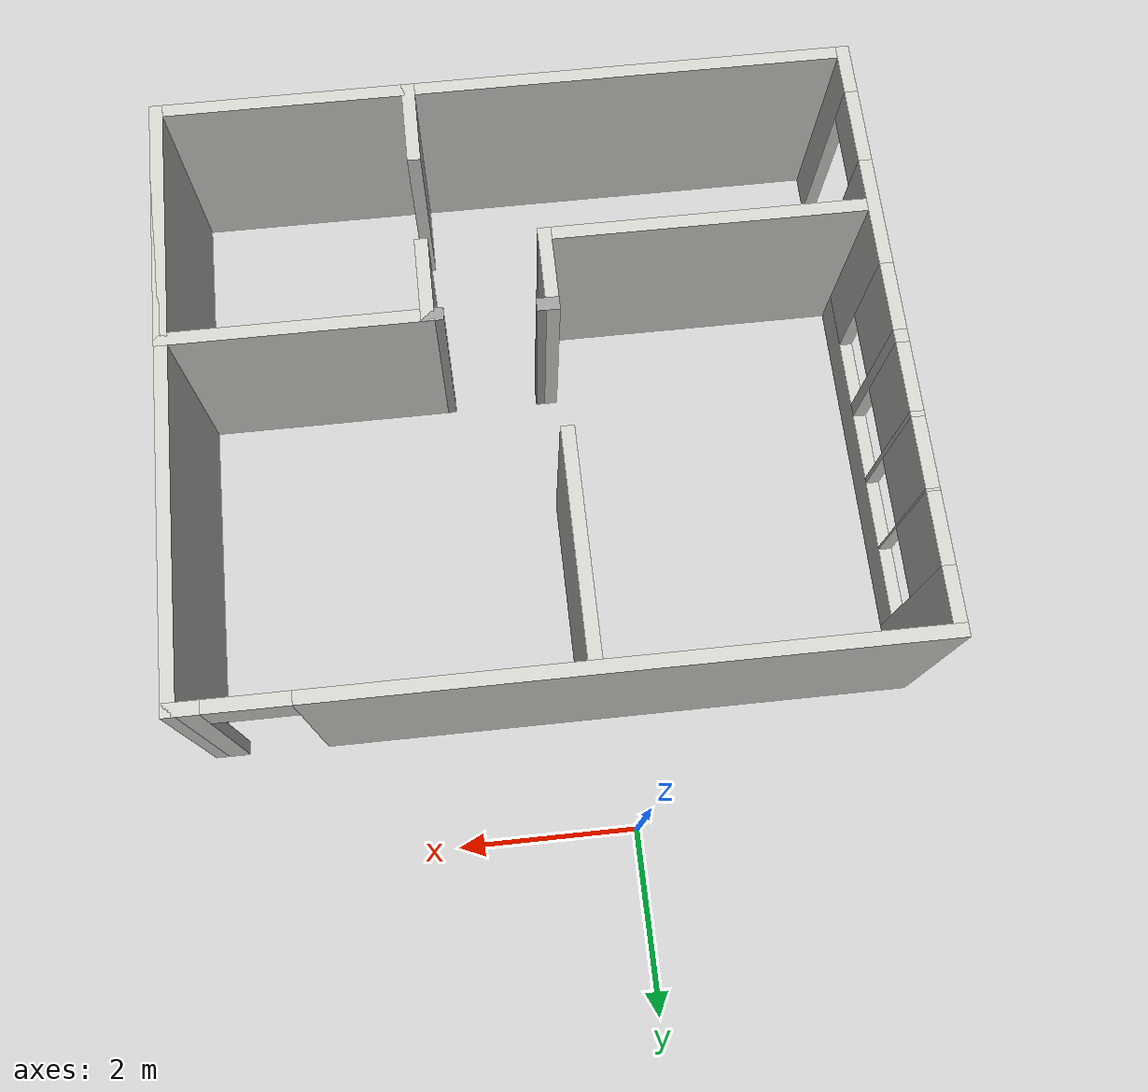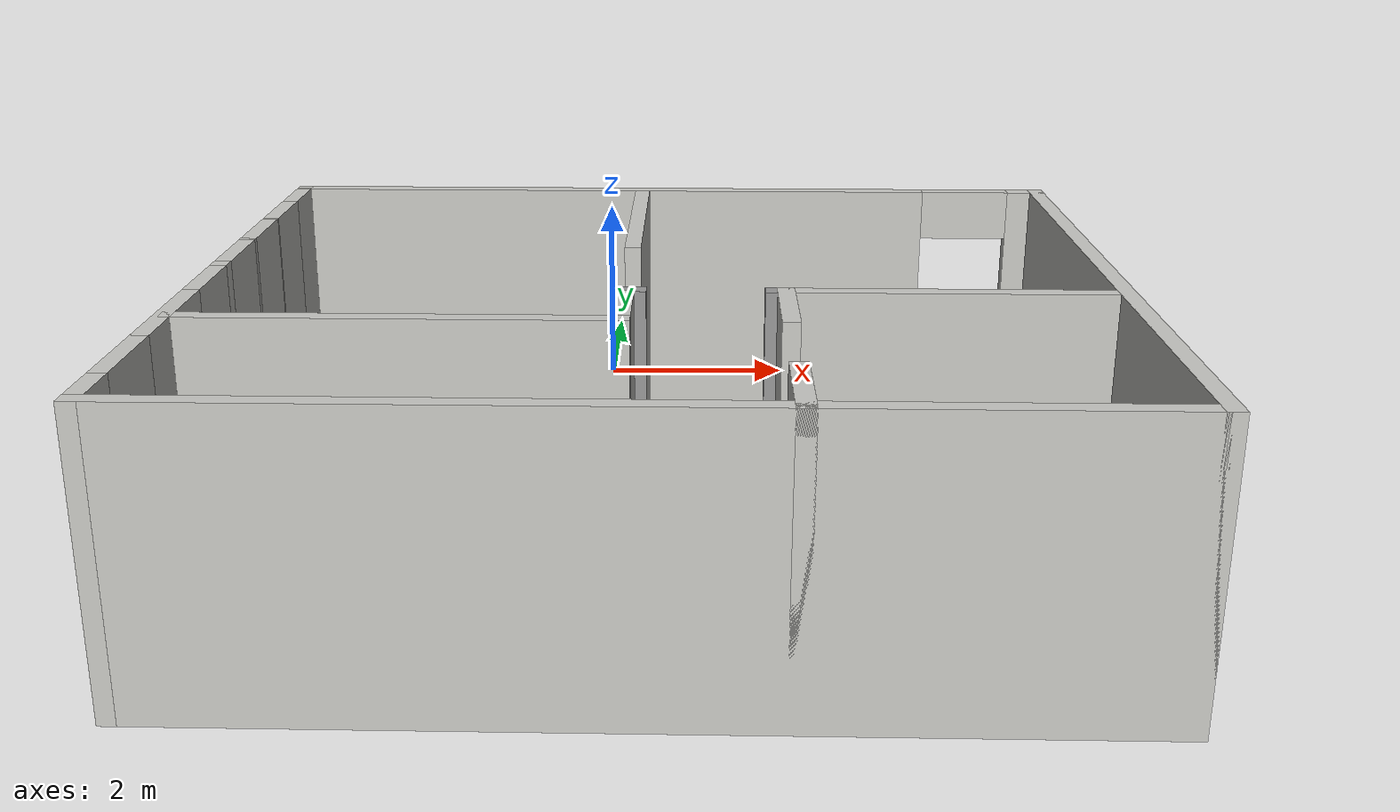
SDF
<?xml version='1.0'?>
<sdf version='1.7'>
  <model name='Four_room'>
    <pose>0.685 -4.1475 0 0 -0 0</pose>
    <link name='Wall_0'>
      <pose>-3.925 -0.6475 0 0 -0 -1.5708</pose>
      <visual name='Wall_0_Visual_0'>
        <pose>-3.12439 0 1.25 0 -0 0</pose>
        <geometry>
          <box>
            <size>0.751219 0.15 2.5</size>
          </box>
        </geometry>
        <material>
          <script>
            <uri>file://media/materials/scripts/gazebo.material</uri>
            <name>Gazebo/CeilingTiled</name>
          </script>
          <ambient>0.760784 0.662745 0.627451 1</ambient>
        </material>
        <meta>
          <layer>0</layer>
        </meta>
      </visual>
      <collision name='Wall_0_Collision_0'>
        <geometry>
          <box>
            <size>0.751219 0.15 2.5</size>
          </box>
        </geometry>
        <pose>-3.12439 0 1.25 0 -0 0</pose>
      </collision>
      <visual name='Wall_0_Visual_1'>
        <pose>3.19277 0 1.25 0 -0 0</pose>
        <geometry>
          <box>
            <size>0.614469 0.15 2.5</size>
          </box>
        </geometry>
        <material>
          <script>
            <uri>file://media/materials/scripts/gazebo.material</uri>
            <name>Gazebo/CeilingTiled</name>
          </script>
          <ambient>0.760784 0.662745 0.627451 1</ambient>
        </material>
        <meta>
          <layer>0</layer>
        </meta>
      </visual>
      <collision name='Wall_0_Collision_1'>
        <geometry>
          <box>
            <size>0.614469 0.15 2.5</size>
          </box>
        </geometry>
        <pose>3.19277 0 1.25 0 -0 0</pose>
      </collision>
      <visual name='Wall_0_Visual_2'>
        <pose>-0.381625 0 0.25 0 -0 0</pose>
        <geometry>
          <box>
            <size>4.73431 0.15 0.5</size>
          </box>
        </geometry>
        <material>
          <script>
            <uri>file://media/materials/scripts/gazebo.material</uri>
            <name>Gazebo/CeilingTiled</name>
          </script>
          <ambient>0.760784 0.662745 0.627451 1</ambient>
        </material>
        <meta>
          <layer>0</layer>
        </meta>
      </visual>
      <collision name='Wall_0_Collision_2'>
        <geometry>
          <box>
            <size>4.73431 0.15 0.5</size>
          </box>
        </geometry>
        <pose>-0.381625 0 0.25 0 -0 0</pose>
      </collision>
      <visual name='Wall_0_Visual_3'>
        <pose>-1.93543 0 1.5 0 -0 0</pose>
        <geometry>
          <box>
            <size>0.026701 0.15 2</size>
          </box>
        </geometry>
        <material>
          <script>
            <uri>file://media/materials/scripts/gazebo.material</uri>
            <name>Gazebo/CeilingTiled</name>
          </script>
          <ambient>0.760784 0.662745 0.627451 1</ambient>
        </material>
        <meta>
          <layer>0</layer>
        </meta>
      </visual>
      <collision name='Wall_0_Collision_3'>
        <geometry>
          <box>
            <size>0.026701 0.15 2</size>
          </box>
        </geometry>
        <pose>-1.93543 0 1.5 0 -0 0</pose>
      </collision>
      <visual name='Wall_0_Visual_4'>
        <pose>-1.09114 0 1.5 0 -0 0</pose>
        <geometry>
          <box>
            <size>0.06188 0.15 2</size>
          </box>
        </geometry>
        <material>
          <script>
            <uri>file://media/materials/scripts/gazebo.material</uri>
            <name>Gazebo/CeilingTiled</name>
          </script>
          <ambient>0.760784 0.662745 0.627451 1</ambient>
        </material>
        <meta>
          <layer>0</layer>
        </meta>
      </visual>
      <collision name='Wall_0_Collision_4'>
        <geometry>
          <box>
            <size>0.06188 0.15 2</size>
          </box>
        </geometry>
        <pose>-1.09114 0 1.5 0 -0 0</pose>
      </collision>
      <visual name='Wall_0_Visual_5'>
        <pose>-0.185287 0 1.5 0 -0 0</pose>
        <geometry>
          <box>
            <size>0.149827 0.15 2</size>
          </box>
        </geometry>
        <material>
          <script>
            <uri>file://media/materials/scripts/gazebo.material</uri>
            <name>Gazebo/CeilingTiled</name>
          </script>
          <ambient>0.760784 0.662745 0.627451 1</ambient>
        </material>
        <meta>
          <layer>0</layer>
        </meta>
      </visual>
      <collision name='Wall_0_Collision_5'>
        <geometry>
          <box>
            <size>0.149827 0.15 2</size>
          </box>
        </geometry>
        <pose>-0.185287 0 1.5 0 -0 0</pose>
      </collision>
      <visual name='Wall_0_Visual_6'>
        <pose>1.33758 0 1.5 0 -0 0</pose>
        <geometry>
          <box>
            <size>1.29591 0.15 2</size>
          </box>
        </geometry>
        <material>
          <script>
            <uri>file://media/materials/scripts/gazebo.material</uri>
            <name>Gazebo/CeilingTiled</name>
          </script>
          <ambient>0.760784 0.662745 0.627451 1</ambient>
        </material>
        <meta>
          <layer>0</layer>
        </meta>
      </visual>
      <collision name='Wall_0_Collision_6'>
        <geometry>
          <box>
            <size>1.29591 0.15 2</size>
          </box>
        </geometry>
        <pose>1.33758 0 1.5 0 -0 0</pose>
      </collision>
      <visual name='Wall_0_Visual_7'>
        <pose>-2.34878 0 1.9 0 -0 0</pose>
        <geometry>
          <box>
            <size>0.8 0.15 1.2</size>
          </box>
        </geometry>
        <material>
          <script>
            <uri>file://media/materials/scripts/gazebo.material</uri>
            <name>Gazebo/CeilingTiled</name>
          </script>
          <ambient>0.760784 0.662745 0.627451 1</ambient>
        </material>
        <meta>
          <layer>0</layer>
        </meta>
      </visual>
      <collision name='Wall_0_Collision_7'>
        <geometry>
          <box>
            <size>0.8 0.15 1.2</size>
          </box>
        </geometry>
        <pose>-2.34878 0 1.9 0 -0 0</pose>
      </collision>
      <visual name='Wall_0_Visual_8'>
        <pose>-1.52208 0 1.9 0 -0 0</pose>
        <geometry>
          <box>
            <size>0.8 0.15 1.2</size>
          </box>
        </geometry>
        <material>
          <script>
            <uri>file://media/materials/scripts/gazebo.material</uri>
            <name>Gazebo/CeilingTiled</name>
          </script>
          <ambient>0.760784 0.662745 0.627451 1</ambient>
        </material>
        <meta>
          <layer>0</layer>
        </meta>
      </visual>
      <collision name='Wall_0_Collision_8'>
        <geometry>
          <box>
            <size>0.8 0.15 1.2</size>
          </box>
        </geometry>
        <pose>-1.52208 0 1.9 0 -0 0</pose>
      </collision>
      <visual name='Wall_0_Visual_9'>
        <pose>-0.6602 0 1.9 0 -0 0</pose>
        <geometry>
          <box>
            <size>0.8 0.15 1.2</size>
          </box>
        </geometry>
        <material>
          <script>
            <uri>file://media/materials/scripts/gazebo.material</uri>
            <name>Gazebo/CeilingTiled</name>
          </script>
          <ambient>0.760784 0.662745 0.627451 1</ambient>
        </material>
        <meta>
          <layer>0</layer>
        </meta>
      </visual>
      <collision name='Wall_0_Collision_9'>
        <geometry>
          <box>
            <size>0.8 0.15 1.2</size>
          </box>
        </geometry>
        <pose>-0.6602 0 1.9 0 -0 0</pose>
      </collision>
      <visual name='Wall_0_Visual_10'>
        <pose>0.289627 0 1.9 0 -0 0</pose>
        <geometry>
          <box>
            <size>0.8 0.15 1.2</size>
          </box>
        </geometry>
        <material>
          <script>
            <uri>file://media/materials/scripts/gazebo.material</uri>
            <name>Gazebo/CeilingTiled</name>
          </script>
          <ambient>0.760784 0.662745 0.627451 1</ambient>
        </material>
        <meta>
          <layer>0</layer>
        </meta>
      </visual>
      <collision name='Wall_0_Collision_10'>
        <geometry>
          <box>
            <size>0.8 0.15 1.2</size>
          </box>
        </geometry>
        <pose>0.289627 0 1.9 0 -0 0</pose>
      </collision>
      <visual name='Wall_0_Visual_11'>
        <pose>2.43553 0 2.25 0 -0 0</pose>
        <geometry>
          <box>
            <size>0.9 0.15 0.5</size>
          </box>
        </geometry>
        <material>
          <script>
            <uri>file://media/materials/scripts/gazebo.material</uri>
            <name>Gazebo/CeilingTiled</name>
          </script>
          <ambient>0.760784 0.662745 0.627451 1</ambient>
        </material>
        <meta>
          <layer>0</layer>
        </meta>
      </visual>
      <collision name='Wall_0_Collision_11'>
        <geometry>
          <box>
            <size>0.9 0.15 0.5</size>
          </box>
        </geometry>
        <pose>2.43553 0 2.25 0 -0 0</pose>
      </collision>
    </link>
    <link name='Wall_1'>
      <collision name='Wall_1_Collision'>
        <geometry>
          <box>
            <size>8 0.15 2.5</size>
          </box>
        </geometry>
        <pose>0 0 1.25 0 -0 0</pose>
      </collision>
      <visual name='Wall_1_Visual'>
        <pose>0 0 1.25 0 -0 0</pose>
        <geometry>
          <box>
            <size>8 0.15 2.5</size>
          </box>
        </geometry>
        <material>
          <script>
            <uri>file://media/materials/scripts/gazebo.material</uri>
            <name>Gazebo/CeilingTiled</name>
          </script>
          <ambient>0.760784 0.662745 0.627451 1</ambient>
        </material>
        <meta>
          <layer>0</layer>
        </meta>
      </visual>
      <pose>0 -4.0725 0 0 -0 0</pose>
    </link>
    <link name='Wall_12'>
      <collision name='Wall_12_Collision'>
        <geometry>
          <box>
            <size>1 0.15 2.5</size>
          </box>
        </geometry>
        <pose>0 0 1.25 0 -0 0</pose>
      </collision>
      <visual name='Wall_12_Visual'>
        <pose>0 0 1.25 0 -0 0</pose>
        <geometry>
          <box>
            <size>1 0.15 2.5</size>
          </box>
        </geometry>
        <material>
          <script>
            <uri>file://media/materials/scripts/gazebo.material</uri>
            <name>Gazebo/CeilingTiled</name>
          </script>
          <ambient>0.760784 0.662745 0.627451 1</ambient>
        </material>
        <meta>
          <layer>0</layer>
        </meta>
      </visual>
      <pose>-0.275 -1.6475 0 0 -0 -1.5708</pose>
    </link>
    <link name='Wall_13'>
      <collision name='Wall_13_Collision'>
        <geometry>
          <box>
            <size>3.75 0.15 2.5</size>
          </box>
        </geometry>
        <pose>0 0 1.25 0 -0 0</pose>
      </collision>
      <visual name='Wall_13_Visual'>
        <pose>0 0 1.25 0 -0 0</pose>
        <geometry>
          <box>
            <size>3.75 0.15 2.5</size>
          </box>
        </geometry>
        <material>
          <script>
            <uri>file://media/materials/scripts/gazebo.material</uri>
            <name>Gazebo/CeilingTiled</name>
          </script>
          <ambient>0.760784 0.662745 0.627451 1</ambient>
        </material>
        <meta>
          <layer>0</layer>
        </meta>
      </visual>
      <pose>-2.075 -2.0725 0 0 -0 3.14159</pose>
    </link>
    <link name='Wall_18'>
      <collision name='Wall_18_Collision'>
        <geometry>
          <box>
            <size>2.5 0.15 2.5</size>
          </box>
        </geometry>
        <pose>0 0 1.25 0 -0 0</pose>
      </collision>
      <visual name='Wall_18_Visual'>
        <pose>0 0 1.25 0 -0 0</pose>
        <geometry>
          <box>
            <size>2.5 0.15 2.5</size>
          </box>
        </geometry>
        <material>
          <script>
            <uri>file://media/materials/scripts/gazebo.material</uri>
            <name>Gazebo/CeilingTiled</name>
          </script>
          <ambient>0.760784 0.662745 0.627451 1</ambient>
        </material>
        <meta>
          <layer>0</layer>
        </meta>
      </visual>
      <pose>-0.275 1.4525 0 0 -0 -1.5708</pose>
    </link>
    <link name='Wall_20'>
      <collision name='Wall_20_Collision'>
        <geometry>
          <box>
            <size>1 0.15 2.5</size>
          </box>
        </geometry>
        <pose>0 0 1.25 0 -0 0</pose>
      </collision>
      <visual name='Wall_20_Visual'>
        <pose>0 0 1.25 0 -0 0</pose>
        <geometry>
          <box>
            <size>1 0.15 2.5</size>
          </box>
        </geometry>
        <material>
          <script>
            <uri>file://media/materials/scripts/gazebo.material</uri>
            <name>Gazebo/CeilingTiled</name>
          </script>
          <ambient>0.760784 0.662745 0.627451 1</ambient>
        </material>
        <meta>
          <layer>0</layer>
        </meta>
      </visual>
      <pose>1.075 -1.6475 0 0 -0 -1.5708</pose>
    </link>
    <link name='Wall_22'>
      <collision name='Wall_22_Collision'>
        <geometry>
          <box>
            <size>1 0.15 2.5</size>
          </box>
        </geometry>
        <pose>0 0 1.25 0 -0 0</pose>
      </collision>
      <visual name='Wall_22_Visual'>
        <pose>0 0 1.25 0 -0 0</pose>
        <geometry>
          <box>
            <size>1 0.15 2.5</size>
          </box>
        </geometry>
        <material>
          <script>
            <uri>file://media/materials/scripts/gazebo.material</uri>
            <name>Gazebo/CeilingTiled</name>
          </script>
          <ambient>0.760784 0.662745 0.627451 1</ambient>
        </material>
        <meta>
          <layer>0</layer>
        </meta>
      </visual>
      <pose>1.075 -3.6475 0 0 -0 1.5708</pose>
    </link>
    <link name='Wall_24'>
      <collision name='Wall_24_Collision'>
        <geometry>
          <box>
            <size>0.25 0.15 2.5</size>
          </box>
        </geometry>
        <pose>0 0 1.25 0 -0 0</pose>
      </collision>
      <visual name='Wall_24_Visual'>
        <pose>0 0 1.25 0 -0 0</pose>
        <geometry>
          <box>
            <size>0.25 0.15 2.5</size>
          </box>
        </geometry>
        <material>
          <script>
            <uri>file://media/materials/scripts/gazebo.material</uri>
            <name>Gazebo/Grey</name>
          </script>
          <ambient>1 1 1 1</ambient>
        </material>
        <meta>
          <layer>0</layer>
        </meta>
      </visual>
      <pose>-0.225 -1.2225 0 0 -0 0</pose>
    </link>
    <link name='Wall_26'>
      <collision name='Wall_26_Collision'>
        <geometry>
          <box>
            <size>0.25 0.15 2.5</size>
          </box>
        </geometry>
        <pose>0 0 1.25 0 -0 0</pose>
      </collision>
      <visual name='Wall_26_Visual'>
        <pose>0 0 1.25 0 -0 0</pose>
        <geometry>
          <box>
            <size>0.25 0.15 2.5</size>
          </box>
        </geometry>
        <material>
          <script>
            <uri>file://media/materials/scripts/gazebo.material</uri>
            <name>Gazebo/Grey</name>
          </script>
          <ambient>1 1 1 1</ambient>
        </material>
        <meta>
          <layer>0</layer>
        </meta>
      </visual>
      <pose>1.025 -1.2225 0 0 -0 3.14159</pose>
    </link>
    <link name='Wall_3'>
      <pose>0 2.7775 0 0 -0 3.14159</pose>
      <visual name='Wall_3_Visual_0'>
        <pose>-3.80622 0 1.25 0 -0 0</pose>
        <geometry>
          <box>
            <size>0.387554 0.15 2.5</size>
          </box>
        </geometry>
        <material>
          <script>
            <uri>file://media/materials/scripts/gazebo.material</uri>
            <name>Gazebo/CeilingTiled</name>
          </script>
          <ambient>0.760784 0.662745 0.627451 1</ambient>
        </material>
        <meta>
          <layer>0</layer>
        </meta>
      </visual>
      <collision name='Wall_3_Collision_0'>
        <geometry>
          <box>
            <size>0.387554 0.15 2.5</size>
          </box>
        </geometry>
        <pose>-3.80622 0 1.25 0 -0 0</pose>
      </collision>
      <visual name='Wall_3_Visual_1'>
        <pose>0.643777 0 1.25 0 -0 0</pose>
        <geometry>
          <box>
            <size>6.71245 0.15 2.5</size>
          </box>
        </geometry>
        <material>
          <script>
            <uri>file://media/materials/scripts/gazebo.material</uri>
            <name>Gazebo/CeilingTiled</name>
          </script>
          <ambient>0.760784 0.662745 0.627451 1</ambient>
        </material>
        <meta>
          <layer>0</layer>
        </meta>
      </visual>
      <collision name='Wall_3_Collision_1'>
        <geometry>
          <box>
            <size>6.71245 0.15 2.5</size>
          </box>
        </geometry>
        <pose>0.643777 0 1.25 0 -0 0</pose>
      </collision>
      <visual name='Wall_3_Visual_2'>
        <pose>-3.16245 0 2.25 0 -0 0</pose>
        <geometry>
          <box>
            <size>0.9 0.15 0.5</size>
          </box>
        </geometry>
        <material>
          <script>
            <uri>file://media/materials/scripts/gazebo.material</uri>
            <name>Gazebo/CeilingTiled</name>
          </script>
          <ambient>0.760784 0.662745 0.627451 1</ambient>
        </material>
        <meta>
          <layer>0</layer>
        </meta>
      </visual>
      <collision name='Wall_3_Collision_2'>
        <geometry>
          <box>
            <size>0.9 0.15 0.5</size>
          </box>
        </geometry>
        <pose>-3.16245 0 2.25 0 -0 0</pose>
      </collision>
    </link>
    <link name='Wall_5'>
      <collision name='Wall_5_Collision'>
        <geometry>
          <box>
            <size>7 0.15 2.5</size>
          </box>
        </geometry>
        <pose>0 0 1.25 0 -0 0</pose>
      </collision>
      <visual name='Wall_5_Visual'>
        <pose>0 0 1.25 0 -0 0</pose>
        <geometry>
          <box>
            <size>7 0.15 2.5</size>
          </box>
        </geometry>
        <material>
          <script>
            <uri>file://media/materials/scripts/gazebo.material</uri>
            <name>Gazebo/CeilingTiled</name>
          </script>
          <ambient>0.760784 0.662745 0.627451 1</ambient>
        </material>
        <meta>
          <layer>0</layer>
        </meta>
      </visual>
      <pose>3.925 -0.6475 0 0 -0 1.5708</pose>
    </link>
    <link name='Wall_7'>
      <collision name='Wall_7_Collision'>
        <geometry>
          <box>
            <size>3 0.15 2.5</size>
          </box>
        </geometry>
        <pose>0 0 1.25 0 -0 0</pose>
      </collision>
      <visual name='Wall_7_Visual'>
        <pose>0 0 1.25 0 -0 0</pose>
        <geometry>
          <box>
            <size>3 0.15 2.5</size>
          </box>
        </geometry>
        <material>
          <script>
            <uri>file://media/materials/scripts/gazebo.material</uri>
            <name>Gazebo/CeilingTiled</name>
          </script>
          <ambient>0.760784 0.662745 0.627451 1</ambient>
        </material>
        <meta>
          <layer>0</layer>
        </meta>
      </visual>
      <pose>3.925 -2.6475 0 0 -0 1.5708</pose>
    </link>
    <link name='Wall_8'>
      <collision name='Wall_8_Collision'>
        <geometry>
          <box>
            <size>3 0.15 2.5</size>
          </box>
        </geometry>
        <pose>0 0 1.25 0 -0 0</pose>
      </collision>
      <visual name='Wall_8_Visual'>
        <pose>0 0 1.25 0 -0 0</pose>
        <geometry>
          <box>
            <size>3 0.15 2.5</size>
          </box>
        </geometry>
        <material>
          <script>
            <uri>file://media/materials/scripts/gazebo.material</uri>
            <name>Gazebo/CeilingTiled</name>
          </script>
          <ambient>0.760784 0.662745 0.627451 1</ambient>
        </material>
        <meta>
          <layer>0</layer>
        </meta>
      </visual>
      <pose>2.5 -1.2225 0 0 -0 3.14159</pose>
    </link>
    <static>1</static>
  </model>
</sdf>
